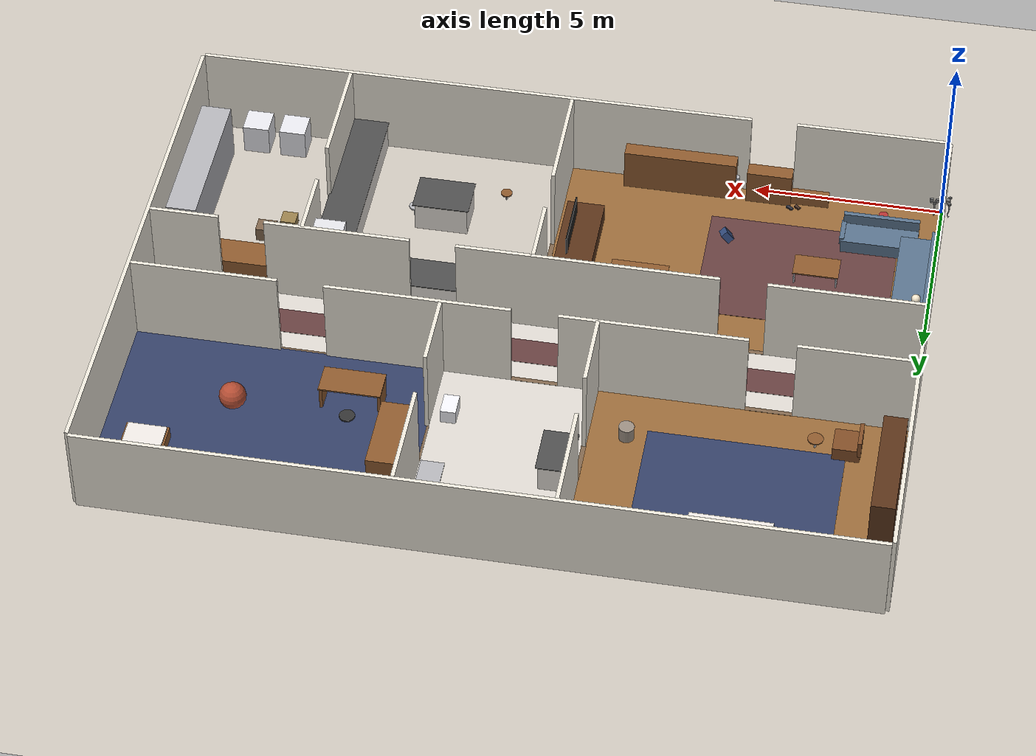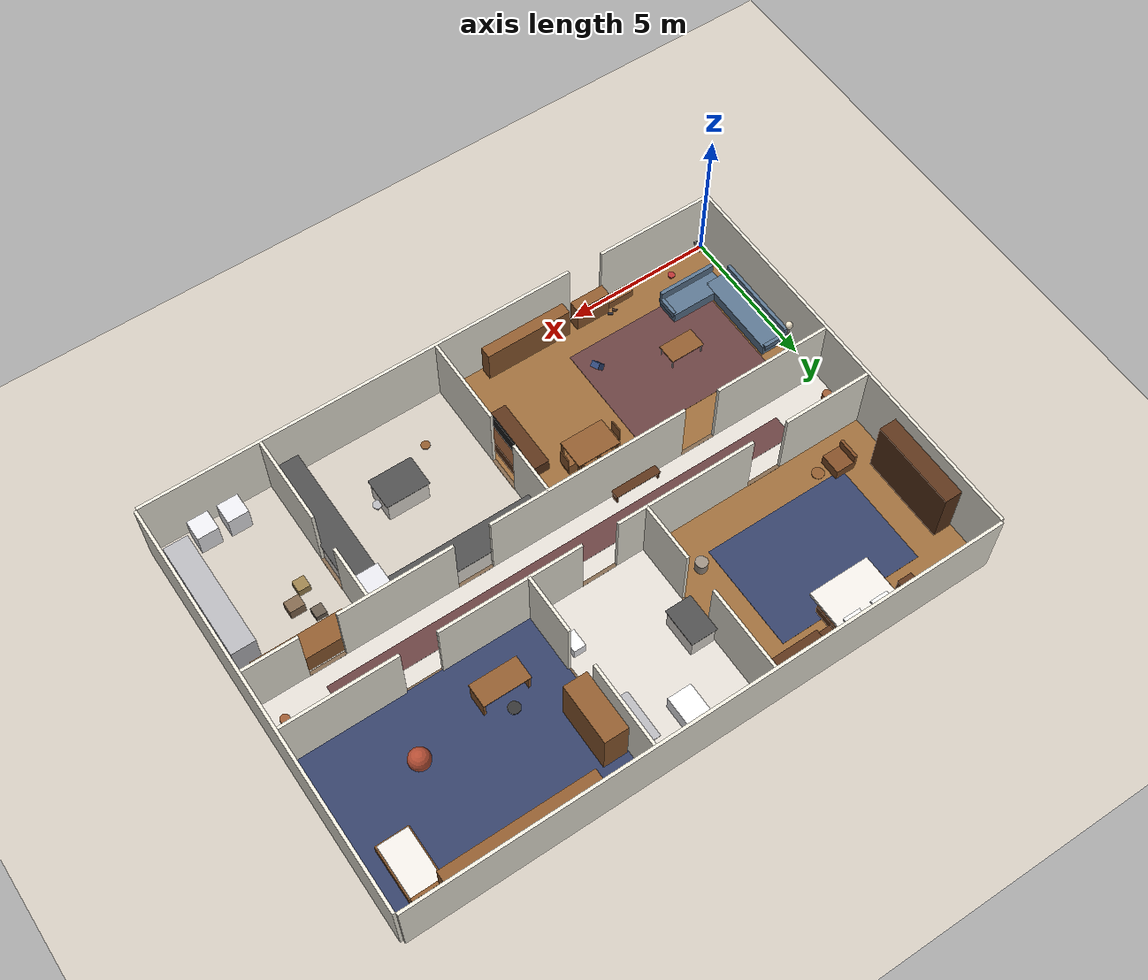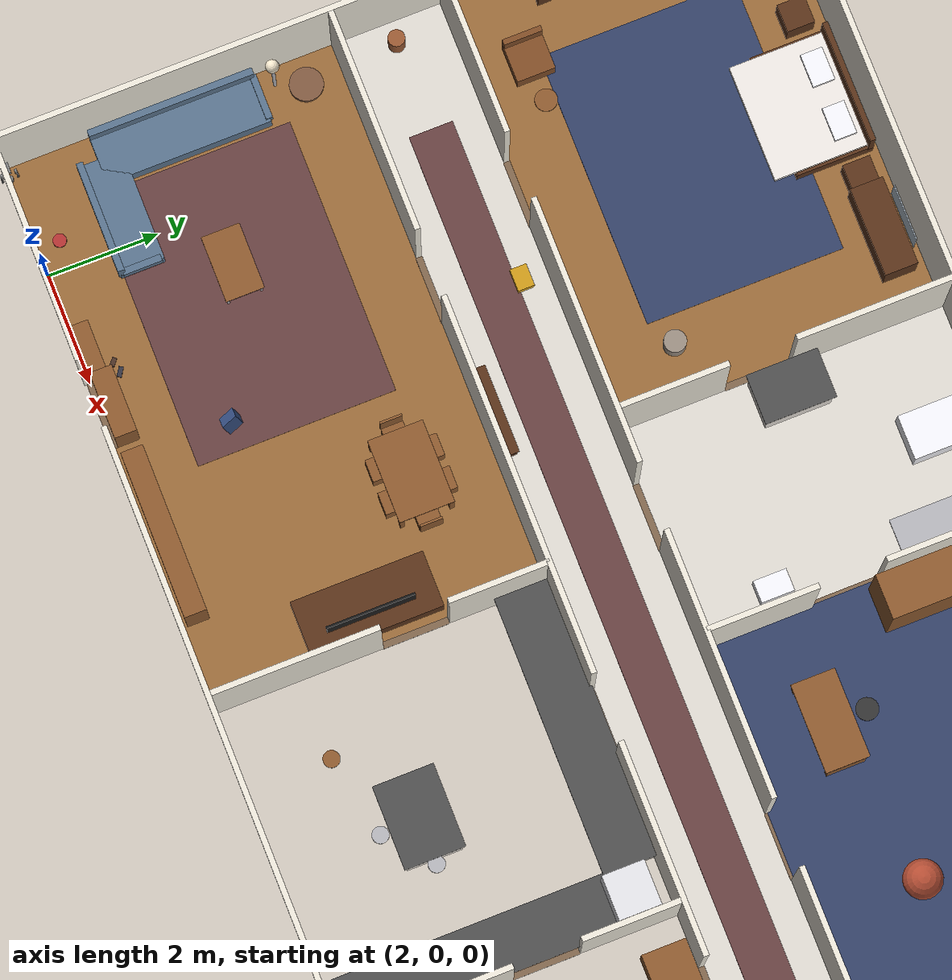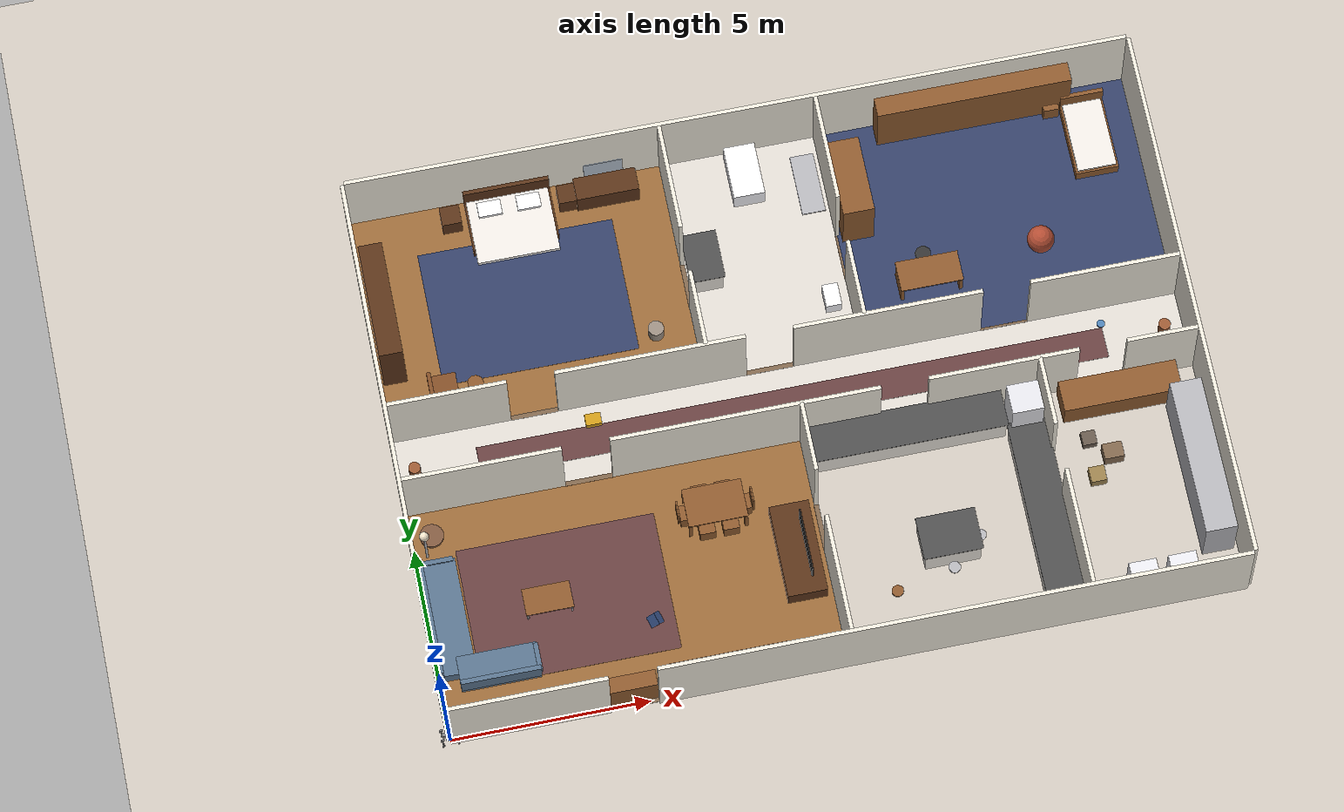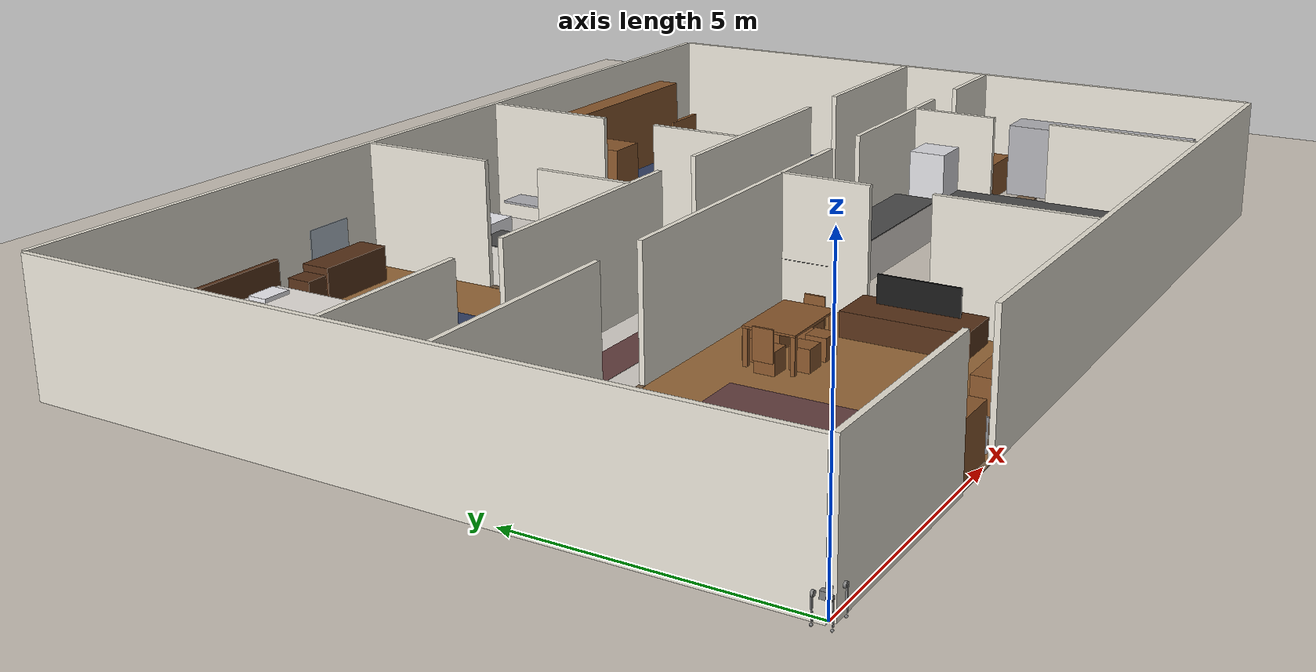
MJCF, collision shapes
<mujoco model="go2 home environment">
  <include file="go2.xml"/>

  <statistic center="10 7 0.5" extent="12"/>

  <visual>
    <headlight diffuse="0.6 0.6 0.6" ambient="0.3 0.3 0.3" specular="0 0 0"/>
    <rgba haze="0.15 0.25 0.35 1"/>
    <global azimuth="-130" elevation="-20"/>
  </visual>

  <asset>
    <texture type="skybox" builtin="gradient" rgb1="0.8 0.85 0.9" rgb2="0.5 0.6 0.7" width="512" height="3072"/>

    <!-- floor textures -->
    <texture type="2d" name="tile_tex" builtin="checker" mark="edge"
      rgb1="0.85 0.82 0.78" rgb2="0.75 0.72 0.68" markrgb="0.9 0.88 0.85" width="300" height="300"/>
    <material name="tile" texture="tile_tex" texuniform="true" texrepeat="12 12" reflectance="0.3"/>

    <texture type="2d" name="wood_floor_tex" builtin="checker"
      rgb1="0.65 0.45 0.25" rgb2="0.55 0.38 0.20" width="200" height="200"/>
    <material name="wood_floor" texture="wood_floor_tex" texuniform="true" texrepeat="15 15" reflectance="0.15"/>

    <texture type="2d" name="carpet_tex" builtin="flat"
      rgb1="0.4 0.25 0.25" rgb2="0.35 0.2 0.2" width="128" height="128"/>
    <material name="carpet" texture="carpet_tex" texuniform="true" reflectance="0.05"/>

    <texture type="2d" name="carpet_blue_tex" builtin="flat"
      rgb1="0.2 0.25 0.4" rgb2="0.18 0.22 0.35" width="128" height="128"/>
    <material name="carpet_blue" texture="carpet_blue_tex" texuniform="true" reflectance="0.05"/>

    <texture type="2d" name="marble_tex" builtin="checker" mark="cross"
      rgb1="0.9 0.88 0.85" rgb2="0.82 0.80 0.77" markrgb="0.85 0.83 0.8" width="300" height="300"/>
    <material name="marble" texture="marble_tex" texuniform="true" texrepeat="6 6" reflectance="0.5"/>

    <!-- furniture & wall materials -->
    <texture type="cube" name="wall_tex" builtin="flat" rgb1="0.92 0.90 0.85" rgb2="0.92 0.90 0.85" width="128" height="128"/>
    <material name="wall" texture="wall_tex"/>
    <texture type="cube" name="wood_tex" builtin="flat" rgb1="0.55 0.35 0.18" rgb2="0.5 0.3 0.15" width="128" height="128"/>
    <material name="wood" texture="wood_tex"/>
    <texture type="cube" name="dark_wood_tex" builtin="flat" rgb1="0.35 0.2 0.1" rgb2="0.3 0.18 0.08" width="128" height="128"/>
    <material name="dark_wood" texture="dark_wood_tex"/>
    <texture type="cube" name="sofa_tex" builtin="flat" rgb1="0.35 0.45 0.55" rgb2="0.3 0.4 0.5" width="128" height="128"/>
    <material name="sofa" texture="sofa_tex"/>
    <texture type="cube" name="sofa_brown_tex" builtin="flat" rgb1="0.5 0.3 0.15" rgb2="0.45 0.27 0.12" width="128" height="128"/>
    <material name="sofa_brown" texture="sofa_brown_tex"/>
    <texture type="cube" name="chrome_tex" builtin="flat" rgb1="0.7 0.7 0.72" rgb2="0.65 0.65 0.67" width="128" height="128"/>
    <material name="chrome" texture="chrome_tex" reflectance="0.4"/>
    <texture type="cube" name="cabinet_tex" builtin="flat" rgb1="0.9 0.88 0.85" rgb2="0.85 0.83 0.8" width="128" height="128"/>
    <material name="cabinet" texture="cabinet_tex"/>
    <texture type="cube" name="counter_tex" builtin="flat" rgb1="0.3 0.3 0.3" rgb2="0.25 0.25 0.25" width="128" height="128"/>
    <material name="counter" texture="counter_tex" reflectance="0.3"/>
  </asset>

  <!--  LAYOUT: 20m x 14m = 280 sqm                                      -->
  <!--       |Master Bedroom  |Bath| Bed 2 / Study                       -->
  <!--       | (8x6=48sqm)   |(4x6)| (8x6=48sqm)                        -->
  <!--  Y=8  +--door----------+door+--door--+                            -->
  <!--       |       Central Hallway (20x2=40sqm)                         -->
  <!--  Y=6  +---door----+--door---+--door--+                            -->
  <!--       | Living Rm  | Kitchen | Utility|                            -->
  <!--       | + Dining   | +Dining |+Garage |                            -->

  <worldbody>
    <!-- multiple lights for large space -->
    <light pos="5 3 2.4" dir="0 0 -1" directional="true"/>
    <light pos="13 3 2.4" dir="0 0 -1" diffuse="0.5 0.5 0.5" specular="0.1 0.1 0.1"/>
    <light pos="5 11 2.4" dir="0 0 -1" diffuse="0.5 0.5 0.5" specular="0.1 0.1 0.1"/>
    <light pos="15 11 2.4" dir="0 0 -1" diffuse="0.5 0.5 0.5" specular="0.1 0.1 0.1"/>

    <!--  GROUND PLANE                                                -->
    <geom name="floor" size="0 0 0.01" type="plane" material="tile"/>

    <!--  OUTER WALLS: 20m x 14m, thickness=0.1m, height=2.5m        -->
    <!-- south wall (Y=0): split for front door at X=4~5.2 -->
    <geom pos="2.0  -0.05 1.25" type="box" size="2.0  0.05 1.25" material="wall"/>
    <geom pos="12.6 -0.05 1.25" type="box" size="7.4  0.05 1.25" material="wall"/>
    <!-- north wall (Y=14) -->
    <geom pos="10.0 14.05 1.25" type="box" size="10.0 0.05 1.25" material="wall"/>
    <!-- west wall (X=0) -->
    <geom pos="-0.05 7.0 1.25" type="box" size="0.05 7.0 1.25" material="wall"/>
    <!-- east wall (X=20) -->
    <geom pos="20.05 7.0 1.25" type="box" size="0.05 7.0 1.25" material="wall"/>

    <!--  HALLWAY WALLS (Y=6 and Y=8)                                 -->
    <!--  Central hallway runs full width: X=0~20, Y=6~8              -->
    <!-- south hallway wall (Y=6): doors at X=4~5.2, X=12~13.2, X=17~18.2 -->
    <geom pos="2.0   6.0 1.25" type="box" size="2.0   0.05 1.25" material="wall"/>
    <geom pos="8.6   6.0 1.25" type="box" size="3.4   0.05 1.25" material="wall"/>
    <geom pos="15.1  6.0 1.25" type="box" size="1.9   0.05 1.25" material="wall"/>
    <geom pos="19.1  6.0 1.25" type="box" size="0.9   0.05 1.25" material="wall"/>

    <!-- north hallway wall (Y=8): doors at X=3~4.2, X=9~10.2, X=15~16.2 -->
    <geom pos="1.5   8.0 1.25" type="box" size="1.5   0.05 1.25" material="wall"/>
    <geom pos="6.6   8.0 1.25" type="box" size="2.4   0.05 1.25" material="wall"/>
    <geom pos="12.6  8.0 1.25" type="box" size="2.4   0.05 1.25" material="wall"/>
    <geom pos="18.1  8.0 1.25" type="box" size="1.9   0.05 1.25" material="wall"/>

    <!--  INTERIOR N-S WALLS (south rooms)                            -->
    <!-- X=10 wall: living room | kitchen, door at Y=3~4.2 -->
    <geom pos="10.0 1.5  1.25" type="box" size="0.05 1.5  1.25" material="wall"/>
    <geom pos="10.0 5.1  1.25" type="box" size="0.05 0.9  1.25" material="wall"/>

    <!-- X=16 wall: kitchen | utility, door at Y=3~4.2 -->
    <geom pos="16.0 1.5  1.25" type="box" size="0.05 1.5  1.25" material="wall"/>
    <geom pos="16.0 5.1  1.25" type="box" size="0.05 0.9  1.25" material="wall"/>

    <!--  INTERIOR N-S WALLS (north rooms)                            -->
    <!-- X=8 wall: master bedroom | bathroom, door at Y=10~11.2 -->
    <geom pos="8.0  9.0  1.25" type="box" size="0.05 1.0  1.25" material="wall"/>
    <geom pos="8.0  12.6 1.25" type="box" size="0.05 1.4  1.25" material="wall"/>

    <!-- X=12 wall: bathroom | bedroom 2, door at Y=10~11.2 -->
    <geom pos="12.0 9.0  1.25" type="box" size="0.05 1.0  1.25" material="wall"/>
    <geom pos="12.0 12.6 1.25" type="box" size="0.05 1.4  1.25" material="wall"/>

    <!--  DOOR THRESHOLDS (1.5cm raised strips)                       -->
    <!-- front door threshold -->
    <geom pos="4.6  0.0  0.008" type="box" size="0.6 0.06 0.008" rgba="0.5 0.4 0.3 1"/>
    <!-- hallway south doors -->
    <geom pos="4.6  6.0  0.008" type="box" size="0.6 0.06 0.008" rgba="0.5 0.4 0.3 1"/>
    <geom pos="12.6 6.0  0.008" type="box" size="0.6 0.06 0.008" rgba="0.5 0.4 0.3 1"/>
    <geom pos="17.6 6.0  0.008" type="box" size="0.6 0.06 0.008" rgba="0.5 0.4 0.3 1"/>
    <!-- hallway north doors -->
    <geom pos="3.6  8.0  0.008" type="box" size="0.6 0.06 0.008" rgba="0.5 0.4 0.3 1"/>
    <geom pos="9.6  8.0  0.008" type="box" size="0.6 0.06 0.008" rgba="0.5 0.4 0.3 1"/>
    <geom pos="15.6 8.0  0.008" type="box" size="0.6 0.06 0.008" rgba="0.5 0.4 0.3 1"/>
    <!-- interior room doors -->
    <geom pos="10.0 3.6  0.008" type="box" size="0.06 0.6 0.008" rgba="0.5 0.4 0.3 1"/>
    <geom pos="16.0 3.6  0.008" type="box" size="0.06 0.6 0.008" rgba="0.5 0.4 0.3 1"/>
    <geom pos="8.0  10.6 0.008" type="box" size="0.06 0.6 0.008" rgba="0.5 0.4 0.3 1"/>
    <geom pos="12.0 10.6 0.008" type="box" size="0.06 0.6 0.008" rgba="0.5 0.4 0.3 1"/>

    <!--  ROOM 1: LIVING ROOM + DINING (X=0~10, Y=0~6, 60sqm)        -->
    <!--  wood floor + large carpet                                   -->
    <geom pos="5.0 3.0 0.005" type="box" size="5.0 3.0 0.005" material="wood_floor" contype="0" conaffinity="0"/>

    <!-- large area rug -->
    <geom pos="3.5 3.0 0.012" type="box" size="2.5 1.8 0.007"
      material="carpet" friction="1.5 0.05 0.01" contype="0" conaffinity="0"/>

    <!-- -- L-shaped sofa -- -->
    <!-- main seat (along west wall) -->
    <geom pos="0.5 3.0 0.2" type="box" size="0.45 1.5 0.2" material="sofa"/>
    <geom pos="0.08 3.0 0.45" type="box" size="0.06 1.5 0.25" material="sofa"/>
    <!-- extension -->
    <geom pos="1.5 1.55 0.2" type="box" size="1.0 0.40 0.2" material="sofa"/>
    <geom pos="1.5 1.18 0.45" type="box" size="1.0 0.06 0.25" material="sofa"/>
    <!-- armrests -->
    <geom pos="0.5 4.48 0.35" type="box" size="0.40 0.06 0.10" material="sofa"/>
    <geom pos="2.48 1.55 0.35" type="box" size="0.06 0.35 0.10" material="sofa"/>

    <!-- -- large coffee table -- -->
    <geom pos="3.0 3.0 0.38" type="box" size="0.6 0.35 0.018" material="wood"/>
    <geom pos="2.45 2.70 0.18" type="cylinder" size="0.025 0.18" material="chrome"/>
    <geom pos="3.55 2.70 0.18" type="cylinder" size="0.025 0.18" material="chrome"/>
    <geom pos="2.45 3.30 0.18" type="cylinder" size="0.025 0.18" material="chrome"/>
    <geom pos="3.55 3.30 0.18" type="cylinder" size="0.025 0.18" material="chrome"/>

    <!-- -- TV wall unit (against east interior wall) -- -->
    <geom pos="9.3 3.0 0.25" type="box" size="0.5 1.2 0.25" material="dark_wood"/>
    <geom pos="9.5 3.0 0.7" type="box" size="0.02 0.8 0.35" rgba="0.1 0.1 0.1 1"/>

    <!-- -- bookshelf (along south wall) -- -->
    <geom pos="7.0 0.25 0.6" type="box" size="1.5 0.20 0.6" material="wood"/>

    <!-- -- floor lamp -->
    <geom pos="0.3 4.8 0.7" type="cylinder" size="0.03 0.7" material="chrome"/>
    <geom pos="0.3 4.8 1.45" type="sphere" size="0.12" rgba="0.95 0.9 0.8 0.6"/>

    <!-- -- dining area (near kitchen door) -- -->
    <!-- dining table -->
    <geom pos="7.5 4.5 0.72" type="box" size="0.75 0.5 0.02" material="wood"/>
    <geom pos="6.80 4.05 0.35" type="box" size="0.04 0.04 0.35" material="wood"/>
    <geom pos="8.20 4.05 0.35" type="box" size="0.04 0.04 0.35" material="wood"/>
    <geom pos="6.80 4.95 0.35" type="box" size="0.04 0.04 0.35" material="wood"/>
    <geom pos="8.20 4.95 0.35" type="box" size="0.04 0.04 0.35" material="wood"/>
    <!-- chairs (6) -->
    <geom pos="6.80 4.5 0.22" type="box" size="0.20 0.20 0.22" material="wood"/>
    <geom pos="6.56 4.5 0.55" type="box" size="0.02 0.20 0.30" material="wood"/>
    <geom pos="8.20 4.5 0.22" type="box" size="0.20 0.20 0.22" material="wood"/>
    <geom pos="8.44 4.5 0.55" type="box" size="0.02 0.20 0.30" material="wood"/>
    <geom pos="7.2 4.05 0.22" type="box" size="0.20 0.20 0.22" material="wood"/>
    <geom pos="7.8 4.05 0.22" type="box" size="0.20 0.20 0.22" material="wood"/>
    <geom pos="7.2 4.95 0.22" type="box" size="0.20 0.20 0.22" material="wood"/>
    <geom pos="7.8 4.95 0.22" type="box" size="0.20 0.20 0.22" material="wood"/>

    <!-- -- entrance foyer area (near front door) -- -->
    <geom pos="4.6 0.25 0.5" type="box" size="0.6 0.20 0.5" material="wood"/>
    <!-- shoe rack -->
    <geom pos="3.5 0.2 0.15" type="box" size="0.5 0.15 0.15" material="wood"/>
    <!-- shoes on floor -->
    <geom pos="3.8 0.5 0.03" type="box" size="0.08 0.04 0.03" euler="0 0 15" rgba="0.3 0.2 0.15 1"/>
    <geom pos="4.0 0.55 0.03" type="box" size="0.09 0.04 0.03" euler="0 0 -10" rgba="0.2 0.2 0.25 1"/>
    <!-- dog bowl -->
    <geom pos="1.5 0.4 0.03" type="cylinder" size="0.12 0.03" rgba="0.7 0.2 0.2 1"/>
    <!-- umbrella stand -->
    <geom pos="5.5 0.2 0.3" type="cylinder" size="0.08 0.3" material="chrome"/>

    <!--  ROOM 2: KITCHEN + DINING (X=10~16, Y=0~6, 36sqm)           -->
    <!--  tile floor (base material, no overlay needed)               -->
    <!-- L-shaped counter along east and north walls -->
    <!-- east counter -->
    <geom pos="15.5 2.5 0.42" type="box" size="0.45 2.5 0.42" material="cabinet"/>
    <geom pos="15.5 2.5 0.85" type="box" size="0.50 2.55 0.01" material="counter"/>
    <!-- north counter (along Y=6 wall) -->
    <geom pos="12.5 5.5 0.42" type="box" size="2.5  0.45 0.42" material="cabinet"/>
    <geom pos="12.5 5.5 0.85" type="box" size="2.55 0.50 0.01" material="counter"/>

    <!-- kitchen island -->
    <geom pos="13.0 2.5 0.42" type="box" size="0.7 0.5 0.42" material="cabinet"/>
    <geom pos="13.0 2.5 0.85" type="box" size="0.75 0.55 0.01" material="counter"/>

    <!-- bar stools (around island) -->
    <geom pos="13.0 1.8 0.3" type="cylinder" size="0.15 0.02" material="chrome"/>
    <geom pos="13.0 1.8 0.15" type="cylinder" size="0.025 0.15" material="chrome"/>
    <geom pos="13.8 2.5 0.3" type="cylinder" size="0.15 0.02" material="chrome"/>
    <geom pos="13.8 2.5 0.15" type="cylinder" size="0.025 0.15" material="chrome"/>

    <!-- refrigerator -->
    <geom pos="15.5 5.3 0.9" type="box" size="0.40 0.38 0.9" rgba="0.88 0.88 0.90 1"/>
    <!-- oven -->
    <geom pos="15.5 0.5 0.42" type="box" size="0.35 0.35 0.42" rgba="0.15 0.15 0.15 1"/>

    <!--  ROOM 3: UTILITY / GARAGE (X=16~20, Y=0~6, 24sqm)           -->
    <!-- washing machine -->
    <geom pos="17.5 0.5 0.42" type="box" size="0.35 0.35 0.42" rgba="0.9 0.9 0.92 1"/>
    <!-- dryer -->
    <geom pos="18.5 0.5 0.42" type="box" size="0.35 0.35 0.42" rgba="0.9 0.9 0.92 1"/>
    <!-- storage shelves -->
    <geom pos="19.5 3.0 0.8" type="box" size="0.4 2.0 0.8" material="chrome"/>
    <!-- workbench -->
    <geom pos="18.0 5.5 0.4" type="box" size="1.5 0.4 0.4" material="wood"/>
    <!-- random boxes on floor -->
    <geom pos="17.0 3.5 0.15" type="box" size="0.2 0.2 0.15" rgba="0.6 0.5 0.3 1"/>
    <geom pos="17.5 4.0 0.2" type="box" size="0.25 0.2 0.2" rgba="0.5 0.4 0.3 1"/>
    <geom pos="17.0 4.5 0.12" type="box" size="0.18 0.18 0.12" rgba="0.4 0.35 0.3 1"/>

    <!--  HALLWAY (X=0~20, Y=6~8, 40sqm)                             -->
    <!--  marble floor + hall table + decorations                     -->
    <geom pos="10.0 7.0 0.006" type="box" size="10.0 1.0 0.006" material="marble" contype="0" conaffinity="0"/>

    <!-- hall console table (against south wall) -->
    <geom pos="7.0 6.2 0.35" type="box" size="0.8 0.15 0.015" material="dark_wood"/>
    <geom pos="6.25 6.2 0.168" type="box" size="0.03 0.12 0.168" material="dark_wood"/>
    <geom pos="7.75 6.2 0.168" type="box" size="0.03 0.12 0.168" material="dark_wood"/>

    <!-- hall runner rug -->
    <geom pos="10.0 7.0 0.013" type="box" size="8.0 0.4 0.007"
      material="carpet" friction="1.2 0.05 0.01" contype="0" conaffinity="0"/>

    <!-- plant pot -->
    <geom pos="0.4 7.0 0.25" type="cylinder" size="0.15 0.25" rgba="0.6 0.35 0.2 1"/>
    <!-- another plant pot -->
    <geom pos="19.5 7.0 0.25" type="cylinder" size="0.15 0.25" rgba="0.6 0.35 0.2 1"/>

    <!--  ROOM 4: MASTER BEDROOM (X=0~8, Y=8~14, 48sqm)              -->
    <!--  wood floor + large rug                                      -->
    <geom pos="4.0 11.0 0.005" type="box" size="4.0 3.0 0.005" material="wood_floor" contype="0" conaffinity="0"/>

    <!-- large bedroom rug -->
    <geom pos="4.0 11.0 0.012" type="box" size="2.5 1.8 0.007"
      material="carpet_blue" friction="1.5 0.05 0.01" contype="0" conaffinity="0"/>

    <!-- king bed (head against north wall) -->
    <geom pos="4.0 13.2 0.18" type="box" size="1.1 0.7 0.18" material="dark_wood"/>
    <geom pos="4.0 13.0 0.40" type="box" size="1.05 0.9 0.06" rgba="0.92 0.90 0.88 1"/>
    <!-- headboard -->
    <geom pos="4.0 13.85 0.6" type="box" size="1.1 0.05 0.35" material="dark_wood"/>
    <!-- pillows -->
    <geom pos="3.5 13.5 0.48" type="box" size="0.3 0.2 0.06" rgba="0.95 0.95 0.97 1"/>
    <geom pos="4.5 13.5 0.48" type="box" size="0.3 0.2 0.06" rgba="0.95 0.95 0.97 1"/>

    <!-- nightstand left -->
    <geom pos="2.5 13.5 0.28" type="box" size="0.25 0.25 0.28" material="dark_wood"/>
    <!-- nightstand right -->
    <geom pos="5.5 13.5 0.28" type="box" size="0.25 0.25 0.28" material="dark_wood"/>

    <!-- wardrobe (along west wall) -->
    <geom pos="0.35 11.0 1.0" type="box" size="0.30 1.5 1.0" material="dark_wood"/>

    <!-- dresser / vanity -->
    <geom pos="6.5 13.5 0.35" type="box" size="0.8 0.3 0.35" material="dark_wood"/>
    <!-- mirror (on wall above dresser) -->
    <geom pos="6.5 13.85 0.9" type="box" size="0.5 0.01 0.35" rgba="0.7 0.75 0.8 0.8"/>

    <!-- armchair -->
    <geom pos="1.5 9.0 0.2" type="box" size="0.35 0.35 0.2" material="sofa_brown"/>
    <geom pos="1.18 9.0 0.45" type="box" size="0.05 0.35 0.25" material="sofa_brown"/>

    <!-- small table next to armchair -->
    <geom pos="2.3 9.0 0.3" type="cylinder" size="0.2 0.015" material="wood"/>
    <geom pos="2.3 9.0 0.143" type="cylinder" size="0.03 0.143" material="chrome"/>

    <!--  ROOM 5: BATHROOM (X=8~12, Y=8~14, 24sqm)                   -->
    <!--  marble floor                                                -->
    <geom pos="10.0 11.0 0.006" type="box" size="2.0 3.0 0.006" material="marble" contype="0" conaffinity="0"/>

    <!-- bathtub (north corner) -->
    <geom pos="10.0 13.2 0.3" type="box" size="0.4 0.7 0.3" rgba="0.95 0.95 0.97 1"/>

    <!-- vanity/sink counter -->
    <geom pos="8.5 11.0 0.4" type="box" size="0.4 0.6 0.4" material="cabinet"/>
    <geom pos="8.5 11.0 0.81" type="box" size="0.45 0.65 0.01" material="counter"/>

    <!-- toilet -->
    <geom pos="11.5 9.5 0.2" type="box" size="0.2 0.3 0.2" rgba="0.95 0.95 0.97 1"/>

    <!-- bathroom shelf -->
    <geom pos="11.5 12.5 0.6" type="box" size="0.3 0.8 0.02" material="chrome"/>

    <!--  ROOM 6: BEDROOM 2 / STUDY (X=12~20, Y=8~14, 48sqm)        -->
    <!--  carpet floor                                                -->
    <geom pos="16.0 11.0 0.01" type="box" size="4.0 3.0 0.01"
      material="carpet_blue" friction="1.5 0.05 0.01" contype="0" conaffinity="0"/>

    <!-- single bed (against east wall) -->
    <geom pos="18.8 12.5 0.18" type="box" size="0.55 1.0 0.18" material="wood"/>
    <geom pos="18.8 12.5 0.38" type="box" size="0.50 0.95 0.05" rgba="0.92 0.90 0.88 1"/>
    <!-- headboard -->
    <geom pos="18.8 13.45 0.55" type="box" size="0.55 0.05 0.30" material="wood"/>

    <!-- nightstand -->
    <geom pos="18.0 13.5 0.25" type="box" size="0.2 0.2 0.25" material="wood"/>

    <!-- large desk (study area, near door) -->
    <geom pos="14.0 9.5 0.72" type="box" size="0.8 0.4 0.02" material="wood"/>
    <geom pos="13.25 9.5 0.35" type="box" size="0.04 0.35 0.35" material="wood"/>
    <geom pos="14.75 9.5 0.35" type="box" size="0.04 0.35 0.35" material="wood"/>

    <!-- desk chair -->
    <geom pos="14.0 10.2 0.22" type="cylinder" size="0.2 0.02" rgba="0.2 0.2 0.2 1"/>
    <geom pos="14.0 10.2 0.11" type="cylinder" size="0.03 0.11" material="chrome"/>

    <!-- large bookshelf (along north wall) -->
    <geom pos="16.0 13.7 0.9" type="box" size="2.5 0.25 0.9" material="wood"/>

    <!-- wardrobe -->
    <geom pos="12.5 12.0 0.9" type="box" size="0.4 1.0 0.9" material="wood"/>

    <!-- bean bag -->
    <geom pos="17.0 10.0 0.2" type="sphere" size="0.35" rgba="0.7 0.3 0.2 1"/>

    <!--  SCATTERED ITEMS (realism + obstacles for the robot)         -->
    <!-- yoga mat in hallway -->
    <geom pos="15.0 7.0 0.006" type="box" size="0.9 0.3 0.004" rgba="0.3 0.6 0.5 0.9"/>

    <!-- backpack on floor (living room) -->
    <geom pos="5.5 2.0 0.15" type="box" size="0.15 0.1 0.15" euler="0 -15 20" rgba="0.2 0.3 0.5 1"/>

    <!-- toy box (hallway) -->
    <geom pos="5.0 7.5 0.1" type="box" size="0.2 0.15 0.1" rgba="0.8 0.6 0.1 1"/>

    <!-- pet bed (living room corner) -->
    <geom pos="0.5 5.3 0.05" type="cylinder" size="0.3 0.05" rgba="0.5 0.35 0.25 1"/>

    <!-- laundry basket (bedroom) -->
    <geom pos="7.0 9.5 0.2" type="cylinder" size="0.2 0.2" rgba="0.6 0.55 0.5 1"/>

    <!-- stool (kitchen) -->
    <geom pos="11.5 1.5 0.22" type="cylinder" size="0.15 0.02" material="wood"/>
    <geom pos="11.5 1.5 0.1" type="cylinder" size="0.025 0.1" material="chrome"/>

    <!-- water bowl (hallway for dog) -->
    <geom pos="18.0 7.5 0.03" type="cylinder" size="0.1 0.03" rgba="0.3 0.5 0.7 1"/>
  </worldbody>
</mujoco>

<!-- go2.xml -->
<mujoco model="go2">
  <compiler angle="radian" meshdir="assets/go2/assets" autolimits="true" />

  <option cone="elliptic" impratio="100" />

  <default>
    <default class="go2">
      <geom friction="0.4" margin="0.001" condim="1"/>
      <joint axis="0 1 0" damping="0.1" armature="0.01" frictionloss="0.2"/>
      <motor ctrlrange="-23.7 23.7"/>
      <default class="abduction">
        <joint axis="1 0 0" range="-1.0472 1.0472"/>
      </default>
      <default class="hip">
        <default class="front_hip">
          <joint range="-1.5708 3.4907"/>
        </default>
        <default class="back_hip">
          <joint range="-0.5236 4.5379"/>
        </default>
      </default>
      <default class="knee">
        <joint range="-2.7227 -0.83776"/>
        <motor ctrlrange="-45.43 45.43"/>
      </default>
      <default class="visual">
        <geom type="mesh" contype="0" conaffinity="0" group="2"/>
      </default>
      <default class="collision">
        <geom group="3"/>
        <default class="foot">
          <geom size="0.022" pos="-0.002 0 -0.213" priority="1" condim="6"
            friction="0.4 0.02 0.01"/>
        </default>
      </default>
    </default>
  </default>

  <asset>
    <material name="metal" rgba=".9 .95 .95 1" />
    <material name="black" rgba="0 0 0 1" />
    <material name="white" rgba="1 1 1 1" />
    <material name="gray" rgba="0.671705 0.692426 0.774270 1" />

    <mesh file="base_0.obj" />
    <mesh file="base_1.obj" />
    <mesh file="base_2.obj" />
    <mesh file="base_3.obj" />
    <mesh file="base_4.obj" />
    <mesh file="hip_0.obj" />
    <mesh file="hip_1.obj" />
    <mesh file="thigh_0.obj" />
    <mesh file="thigh_1.obj" />
    <mesh file="thigh_mirror_0.obj" />
    <mesh file="thigh_mirror_1.obj" />
    <mesh file="calf_0.obj" />
    <mesh file="calf_1.obj" />
    <mesh file="calf_mirror_0.obj" />
    <mesh file="calf_mirror_1.obj" />
    <mesh file="foot.obj" />
  </asset>

  <worldbody>
    <body name="base_link" pos="0 0 0.445" childclass="go2">
      <inertial pos="0.021112 0 -0.005366" quat="-0.000543471 0.713435 -0.00173769 0.700719"
        mass="6.921"
        diaginertia="0.107027 0.0980771 0.0244531" />
      <freejoint />
      <geom mesh="base_0" material="black" class="visual" />
      <geom mesh="base_1" material="black" class="visual" />
      <geom mesh="base_2" material="black" class="visual" />
      <geom mesh="base_3" material="white" class="visual" />
      <geom mesh="base_4" material="gray" class="visual" />
      <geom size="0.1881 0.04675 0.057" type="box" class="collision" />
      <geom size="0.05 0.045" pos="0.285 0 0.01" type="cylinder" class="collision" />
      <geom size="0.047" pos="0.293 0 -0.06" class="collision" />
      <site name="imu" pos="-0.02557 0 0.04232" />
      <body name="FL_hip" pos="0.1934 0.0465 0">
        <inertial pos="-0.0054 0.00194 -0.000105" quat="0.497014 0.499245 0.505462 0.498237"
          mass="0.678"
          diaginertia="0.00088403 0.000596003 0.000479967" />
        <joint name="FL_hip_joint" class="abduction" />
        <geom mesh="hip_0" material="metal" class="visual" />
        <geom mesh="hip_1" material="gray" class="visual" />
        <geom size="0.046 0.02" pos="0 0.08 0" quat="1 1 0 0" type="cylinder" class="collision" />
        <body name="FL_thigh" pos="0 0.0955 0">
          <inertial pos="-0.00374 -0.0223 -0.0327" quat="0.829533 0.0847635 -0.0200632 0.551623"
            mass="1.152"
            diaginertia="0.00594973 0.00584149 0.000878787" />
          <joint name="FL_thigh_joint" class="front_hip" />
          <geom mesh="thigh_0" material="metal" class="visual" />
          <geom mesh="thigh_1" material="gray" class="visual" />
          <geom size="0.1065 0.01225 0.017" pos="0 0 -0.1065" quat="0.707107 0 0.707107 0"
            type="box" class="collision" />
          <body name="FL_calf" pos="0 0 -0.213">
            <inertial pos="0.00629595 -0.000622121 -0.141417"
              quat="0.710672 0.00154099 -0.00450087 0.703508"
              mass="0.241352" diaginertia="0.0014901 0.00146356 5.31397e-05" />
            <joint name="FL_calf_joint" class="knee" />
            <geom mesh="calf_0" material="gray" class="visual" />
            <geom mesh="calf_1" material="black" class="visual" />
            <geom size="0.012 0.06" pos="0.008 0 -0.06" quat="0.994493 0 -0.104807 0"
              type="cylinder" class="collision" />
            <geom size="0.011 0.0325" pos="0.02 0 -0.148" quat="0.999688 0 0.0249974 0"
              type="cylinder" class="collision" />
            <geom pos="0 0 -0.213" mesh="foot" class="visual" material="black" />
            <geom name="FL" class="foot" />
            <body name="FL_foot" pos="0 0 -0.213" />
          </body>
        </body>
      </body>
      <body name="FR_hip" pos="0.1934 -0.0465 0">
        <inertial pos="-0.0054 -0.00194 -0.000105" quat="0.498237 0.505462 0.499245 0.497014"
          mass="0.678"
          diaginertia="0.00088403 0.000596003 0.000479967" />
        <joint name="FR_hip_joint" class="abduction" />
        <geom mesh="hip_0" material="metal" class="visual" quat="4.63268e-05 1 0 0" />
        <geom mesh="hip_1" material="gray" class="visual" quat="4.63268e-05 1 0 0" />
        <geom size="0.046 0.02" pos="0 -0.08 0" quat="0.707107 0.707107 0 0" type="cylinder"
          class="collision" />
        <body name="FR_thigh" pos="0 -0.0955 0">
          <inertial pos="-0.00374 0.0223 -0.0327" quat="0.551623 -0.0200632 0.0847635 0.829533"
            mass="1.152"
            diaginertia="0.00594973 0.00584149 0.000878787" />
          <joint name="FR_thigh_joint" class="front_hip" />
          <geom mesh="thigh_mirror_0" material="metal" class="visual" />
          <geom mesh="thigh_mirror_1" material="gray" class="visual" />
          <geom size="0.1065 0.01225 0.017" pos="0 0 -0.1065" quat="0.707107 0 0.707107 0"
            type="box" class="collision" />
          <body name="FR_calf" pos="0 0 -0.213">
            <inertial pos="0.00629595 0.000622121 -0.141417"
              quat="0.703508 -0.00450087 0.00154099 0.710672"
              mass="0.241352" diaginertia="0.0014901 0.00146356 5.31397e-05" />
            <joint name="FR_calf_joint" class="knee" />
            <geom mesh="calf_mirror_0" material="gray" class="visual" />
            <geom mesh="calf_mirror_1" material="black" class="visual" />
            <geom size="0.013 0.06" pos="0.01 0 -0.06" quat="0.995004 0 -0.0998334 0"
              type="cylinder" class="collision" />
            <geom size="0.011 0.0325" pos="0.02 0 -0.148" quat="0.999688 0 0.0249974 0"
              type="cylinder" class="collision" />
            <geom pos="0 0 -0.213" mesh="foot" class="visual" material="black" />
            <geom name="FR" class="foot" />
            <body name="FR_foot" pos="0 0 -0.213" />
          </body>
        </body>
      </body>
      <body name="RL_hip" pos="-0.1934 0.0465 0">
        <inertial pos="0.0054 0.00194 -0.000105" quat="0.505462 0.498237 0.497014 0.499245"
          mass="0.678"
          diaginertia="0.00088403 0.000596003 0.000479967" />
        <joint name="RL_hip_joint" class="abduction" />
        <geom mesh="hip_0" material="metal" class="visual" quat="4.63268e-05 0 1 0" />
        <geom mesh="hip_1" material="gray" class="visual" quat="4.63268e-05 0 1 0" />
        <geom size="0.046 0.02" pos="0 0.08 0" quat="0.707107 0.707107 0 0" type="cylinder"
          class="collision" />
        <body name="RL_thigh" pos="0 0.0955 0">
          <inertial pos="-0.00374 -0.0223 -0.0327" quat="0.829533 0.0847635 -0.0200632 0.551623"
            mass="1.152"
            diaginertia="0.00594973 0.00584149 0.000878787" />
          <joint name="RL_thigh_joint" class="back_hip" />
          <geom mesh="thigh_0" material="metal" class="visual" />
          <geom mesh="thigh_1" material="gray" class="visual" />
          <geom size="0.1065 0.01225 0.017" pos="0 0 -0.1065" quat="0.707107 0 0.707107 0"
            type="box" class="collision" />
          <body name="RL_calf" pos="0 0 -0.213">
            <inertial pos="0.00629595 -0.000622121 -0.141417"
              quat="0.710672 0.00154099 -0.00450087 0.703508"
              mass="0.241352" diaginertia="0.0014901 0.00146356 5.31397e-05" />
            <joint name="RL_calf_joint" class="knee" />
            <geom mesh="calf_0" material="gray" class="visual" />
            <geom mesh="calf_1" material="black" class="visual" />
            <geom size="0.013 0.06" pos="0.01 0 -0.06" quat="0.995004 0 -0.0998334 0"
              type="cylinder" class="collision" />
            <geom size="0.011 0.0325" pos="0.02 0 -0.148" quat="0.999688 0 0.0249974 0"
              type="cylinder" class="collision" />
            <geom pos="0 0 -0.213" mesh="foot" class="visual" material="black" />
            <geom name="RL" class="foot" />
            <body name="RL_foot" pos="0 0 -0.213" />
          </body>
        </body>
      </body>
      <body name="RR_hip" pos="-0.1934 -0.0465 0">
        <inertial pos="0.0054 -0.00194 -0.000105" quat="0.499245 0.497014 0.498237 0.505462"
          mass="0.678"
          diaginertia="0.00088403 0.000596003 0.000479967" />
        <joint name="RR_hip_joint" class="abduction" />
        <geom mesh="hip_0" material="metal" class="visual"
          quat="2.14617e-09 4.63268e-05 4.63268e-05 -1" />
        <geom mesh="hip_1" material="gray" class="visual"
          quat="2.14617e-09 4.63268e-05 4.63268e-05 -1" />
        <geom size="0.046 0.02" pos="0 -0.08 0" quat="0.707107 0.707107 0 0" type="cylinder"
          class="collision" />
        <body name="RR_thigh" pos="0 -0.0955 0">
          <inertial pos="-0.00374 0.0223 -0.0327" quat="0.551623 -0.0200632 0.0847635 0.829533"
            mass="1.152"
            diaginertia="0.00594973 0.00584149 0.000878787" />
          <joint name="RR_thigh_joint" class="back_hip" />
          <geom mesh="thigh_mirror_0" material="metal" class="visual" />
          <geom mesh="thigh_mirror_1" material="gray" class="visual" />
          <geom size="0.1065 0.01225 0.017" pos="0 0 -0.1065" quat="0.707107 0 0.707107 0"
            type="box" class="collision" />
          <body name="RR_calf" pos="0 0 -0.213">
            <inertial pos="0.00629595 0.000622121 -0.141417"
              quat="0.703508 -0.00450087 0.00154099 0.710672"
              mass="0.241352" diaginertia="0.0014901 0.00146356 5.31397e-05" />
            <joint name="RR_calf_joint" class="knee" />
            <geom mesh="calf_mirror_0" material="gray" class="visual" />
            <geom mesh="calf_mirror_1" material="black" class="visual" />
            <geom size="0.013 0.06" pos="0.01 0 -0.06" quat="0.995004 0 -0.0998334 0"
              type="cylinder" class="collision" />
            <geom size="0.011 0.0325" pos="0.02 0 -0.148" quat="0.999688 0 0.0249974 0"
              type="cylinder" class="collision" />
            <geom pos="0 0 -0.213" mesh="foot" class="visual" material="black" />
            <geom name="RR" class="foot" />
            <body name="RR_foot" pos="0 0 -0.213" />
          </body>
        </body>
      </body>
    </body>
  </worldbody>

  <actuator>
    <motor class="abduction" name="FR_hip" joint="FR_hip_joint" />
    <motor class="hip" name="FR_thigh" joint="FR_thigh_joint" />
    <motor class="knee" name="FR_calf" joint="FR_calf_joint" />
    <motor class="abduction" name="FL_hip" joint="FL_hip_joint" />
    <motor class="hip" name="FL_thigh" joint="FL_thigh_joint" />
    <motor class="knee" name="FL_calf" joint="FL_calf_joint" />
    <motor class="abduction" name="RR_hip" joint="RR_hip_joint" />
    <motor class="hip" name="RR_thigh" joint="RR_thigh_joint" />
    <motor class="knee" name="RR_calf" joint="RR_calf_joint" />
    <motor class="abduction" name="RL_hip" joint="RL_hip_joint" />
    <motor class="hip" name="RL_thigh" joint="RL_thigh_joint" />
    <motor class="knee" name="RL_calf" joint="RL_calf_joint" />
  </actuator>

  <sensor>
    <jointpos name="FR_hip_pos" joint="FR_hip_joint" />
    <jointpos name="FR_thigh_pos" joint="FR_thigh_joint" />
    <jointpos name="FR_calf_pos" joint="FR_calf_joint" />
    <jointpos name="FL_hip_pos" joint="FL_hip_joint" />
    <jointpos name="FL_thigh_pos" joint="FL_thigh_joint" />
    <jointpos name="FL_calf_pos" joint="FL_calf_joint" />
    <jointpos name="RR_hip_pos" joint="RR_hip_joint" />
    <jointpos name="RR_thigh_pos" joint="RR_thigh_joint" />
    <jointpos name="RR_calf_pos" joint="RR_calf_joint" />
    <jointpos name="RL_hip_pos" joint="RL_hip_joint" />
    <jointpos name="RL_thigh_pos" joint="RL_thigh_joint" />
    <jointpos name="RL_calf_pos" joint="RL_calf_joint" />

    <jointvel name="FR_hip_vel" joint="FR_hip_joint" />
    <jointvel name="FR_thigh_vel" joint="FR_thigh_joint" />
    <jointvel name="FR_calf_vel" joint="FR_calf_joint" />
    <jointvel name="FL_hip_vel" joint="FL_hip_joint" />
    <jointvel name="FL_thigh_vel" joint="FL_thigh_joint" />
    <jointvel name="FL_calf_vel" joint="FL_calf_joint" />
    <jointvel name="RR_hip_vel" joint="RR_hip_joint" />
    <jointvel name="RR_thigh_vel" joint="RR_thigh_joint" />
    <jointvel name="RR_calf_vel" joint="RR_calf_joint" />
    <jointvel name="RL_hip_vel" joint="RL_hip_joint" />
    <jointvel name="RL_thigh_vel" joint="RL_thigh_joint" />
    <jointvel name="RL_calf_vel" joint="RL_calf_joint" />

    <jointactuatorfrc name="FR_hip_torque" joint="FR_hip_joint" noise="0.01" />
    <jointactuatorfrc name="FR_thigh_torque" joint="FR_thigh_joint" noise="0.01" />
    <jointactuatorfrc name="FR_calf_torque" joint="FR_calf_joint" noise="0.01" />
    <jointactuatorfrc name="FL_hip_torque" joint="FL_hip_joint" noise="0.01" />
    <jointactuatorfrc name="FL_thigh_torque" joint="FL_thigh_joint" noise="0.01" />
    <jointactuatorfrc name="FL_calf_torque" joint="FL_calf_joint" noise="0.01" />
    <jointactuatorfrc name="RR_hip_torque" joint="RR_hip_joint" noise="0.01" />
    <jointactuatorfrc name="RR_thigh_torque" joint="RR_thigh_joint" noise="0.01" />
    <jointactuatorfrc name="RR_calf_torque" joint="RR_calf_joint" noise="0.01" />
    <jointactuatorfrc name="RL_hip_torque" joint="RL_hip_joint" noise="0.01" />
    <jointactuatorfrc name="RL_thigh_torque" joint="RL_thigh_joint" noise="0.01" />
    <jointactuatorfrc name="RL_calf_torque" joint="RL_calf_joint" noise="0.01" />

    <framequat name="imu_quat" objtype="site" objname="imu" />
    <gyro name="imu_gyro" site="imu" />
    <accelerometer name="imu_acc" site="imu" />

    <framepos name="frame_pos" objtype="site" objname="imu" />
    <framelinvel name="frame_vel" objtype="site" objname="imu" />
  </sensor>

  <keyframe>
    <key name="home" qpos="0 0 0.27 1 0 0 0 0 0.9 -1.8 0 0.9 -1.8 0 0.9 -1.8 0 0.9 -1.8"
      ctrl="0 0.9 -1.8 0 0.9 -1.8 0 0.9 -1.8 0 0.9 -1.8" />
  </keyframe>
</mujoco>
